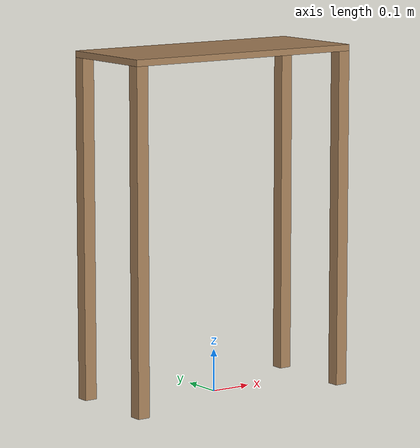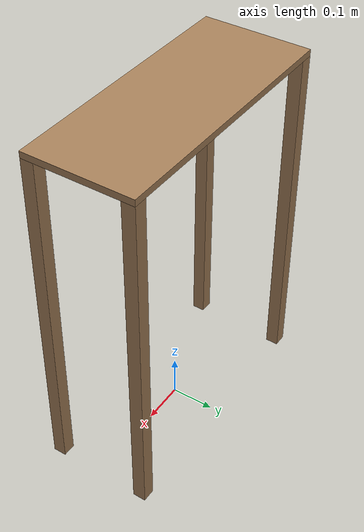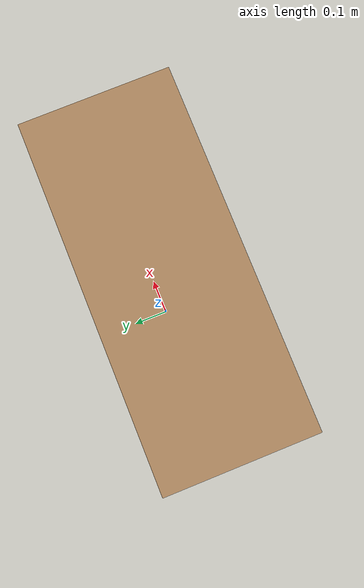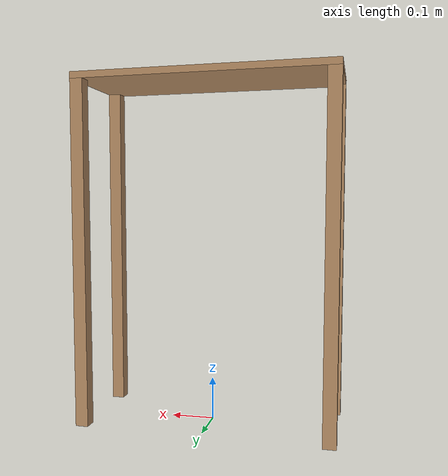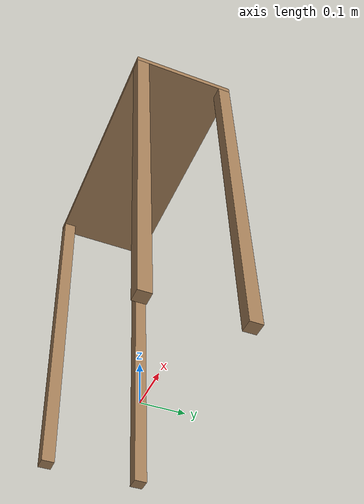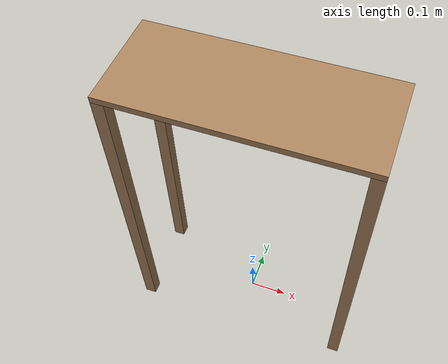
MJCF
<?xml version="1.0" encoding="utf-8"?>
<mujoco model="basket_shelf">
  <asset>
    <!-- 材质定义 -->
    <material name="shelf_metal" rgba="0.5 0.5 0.55 1" specular="0.3" shininess="0.2"/>
    <material name="shelf_wood" rgba="0.65 0.5 0.35 1" specular="0.1" shininess="0.1"/>
  </asset>

  <worldbody>
    <body name="basket_shelf">
      <!-- 四条腿（长方体，从地面到架板） -->
      <!-- 置物架尺寸：长0.6m(X方向), 宽0.25m(Y方向), 高0.8m(Z方向) -->
      <!-- 腿的位置：距离中心 X方向±0.285m, Y方向±0.11m -->

      <!-- 前左腿 (X+, Y+) -->
      <geom name="leg_fl" type="box"
            size="0.015 0.015 0.4"
            pos="0.285 0.11 0.4"
            material="shelf_wood"
            mass="1"/>

      <!-- 前右腿 (X+, Y-) -->
      <geom name="leg_fr" type="box"
            size="0.015 0.015 0.4"
            pos="0.285 -0.11 0.4"
            material="shelf_wood"
            mass="1"/>

      <!-- 后左腿 (X-, Y+) -->
      <geom name="leg_bl" type="box"
            size="0.015 0.015 0.4"
            pos="-0.285 0.11 0.4"
            material="shelf_wood"
            mass="1"/>

      <!-- 后右腿 (X-, Y-) -->
      <geom name="leg_br" type="box"
            size="0.015 0.015 0.4"
            pos="-0.285 -0.11 0.4"
            material="shelf_wood"
            mass="1"/>

      <!-- 架板 (长0.6m, 宽0.25m, 厚0.015m) -->
      <!-- size参数是半尺寸：X=0.3, Y=0.125, Z=0.0075 -->
      <!-- 架板中心在z=0.8075，这样底部正好在z=0.8（与腿顶部贴合） -->
      <geom name="shelf" type="box"
            size="0.3 0.125 0.0075"
            pos="0 0 0.8075"
            material="shelf_wood"
            mass="2"/>
    </body>
  </worldbody>
</mujoco>
